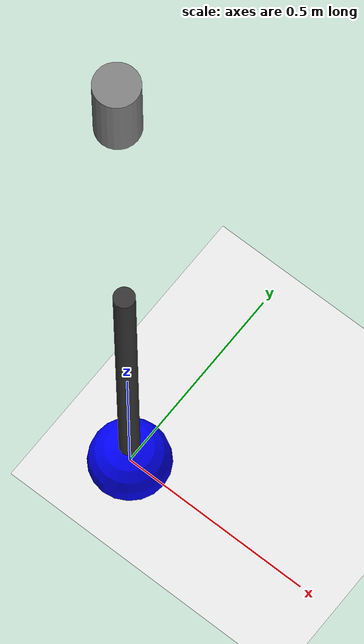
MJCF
<mujoco model="Pendulum with Arm">
    <compiler angle="radian" inertiafromgeom="true"/>

    <option gravity="0 0 -9.81" timestep="0.01"/>

    <worldbody>
        <light pos="0 0 3"/>
        <geom type="plane" size="2 2 0.1" rgba="0.9 0.9 0.9 1"/>

        <!-- Fixed anchor point -->
        <body name="anchor" pos="0 0 2">
        <geom type="cylinder" size="0.05 0.1" rgba="0.5 0.5 0.5 1"/>

        <!-- Pendulum bob -->
        <body name="bob" pos="0 0 -1">
        <!-- Joint at the connection point -->
        <joint name="hinge" type="hinge" axis="1 0 0" pos="0 0 0" range="-3.14 3.14" damping="0.1"/>

        <!-- Pendulum rod -->
        <geom type="cylinder" size="0.025 0.5" pos="0 0 -0.5" rgba="0.2 0.2 0.2 1" mass="0.1"/>

        <!-- Bob mass at the end -->
        <geom type="sphere" size="0.1" pos="0 0 -1" rgba="0 0 1 1" mass="1"/>
    </body>
</body>
</worldbody>

<actuator>
    <motor joint="hinge" gear="10" ctrllimited="true" ctrlrange="-5 5"/>
</actuator>
</mujoco>
